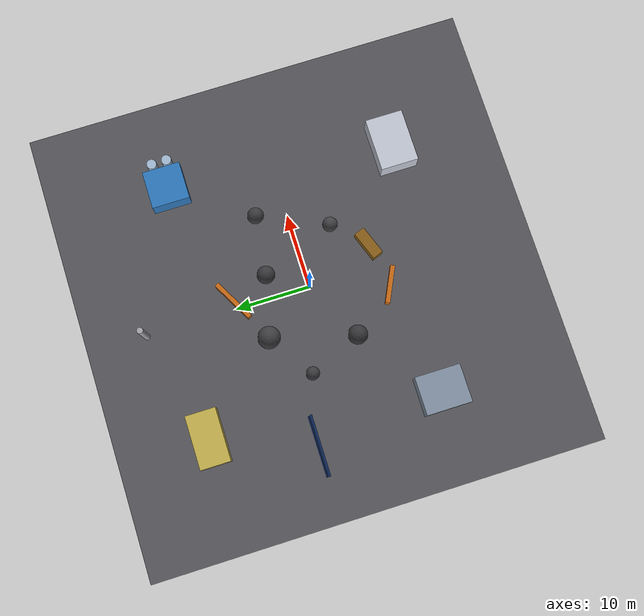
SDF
<sdf version="1.9">
 <world name="lunar_habitat">
  <gravity>0 0 -1.62</gravity>
  <plugin filename="gz-sim-physics-system" name="gz::sim::systems::Physics"/>
  <plugin filename="gz-sim-user-commands-system" name="gz::sim::systems::UserCommands"/>
  <plugin filename="gz-sim-scene-broadcaster-system" name="gz::sim::systems::SceneBroadcaster"/>
  <plugin filename="gz-sim-sensors-system" name="gz::sim::systems::Sensors">
   <render_engine>ogre2</render_engine>
  </plugin>
  <plugin filename="gz-sim-imu-system" name="gz::sim::systems::Imu"/>
  <scene>
   <ambient>0.08 0.08 0.10 1</ambient>
   <background>0.002 0.002 0.008 1</background>
   <shadows>true</shadows>
  </scene>
  <light name="lunar_sun" type="directional">
   <pose>0 0 40 0 0 0</pose>
   <diffuse>0.95 0.95 0.90 1</diffuse>
   <specular>0.25 0.25 0.25 1</specular>
   <direction>-0.5 0.25 -1</direction>
  </light>
  <model name="lunar_surface">
   <static>true</static>
   <link name="surface">
    <pose>0 0 -0.1 0 0 0</pose>
    <collision name="collision"><geometry><box><size>60 60 0.2</size></box></geometry></collision>
    <visual name="visual">
     <geometry><box><size>60 60 0.2</size></box></geometry>
     <material>
      <ambient>0.22 0.22 0.24 1</ambient>
      <diffuse>0.34 0.34 0.36 1</diffuse>
      <specular>0.03 0.03 0.03 1</specular>
     </material>
    </visual>
   </link>
  </model>
  <model name="habitat_module">
   <static>true</static>
   <pose>15 -16 1.5 0 0 0</pose>
   <link name="body">
    <collision name="collision"><geometry><box><size>7 5 3</size></box></geometry></collision>
    <visual name="visual">
     <geometry><box><size>7 5 3</size></box></geometry>
     <material>
      <ambient>0.65 0.67 0.72 1</ambient>
      <diffuse>0.78 0.80 0.85 1</diffuse>
      <specular>0.3 0.3 0.3 1</specular>
     </material>
    </visual>
   </link>
  </model>
  <model name="oxygen_station">
   <static>true</static>
   <pose>18 14 1.4 0 0 0</pose>
   <link name="body">
    <collision name="collision"><geometry><box><size>5 5 2.8</size></box></geometry></collision>
    <visual name="visual">
     <geometry><box><size>5 5 2.8</size></box></geometry>
     <material>
      <ambient>0.15 0.32 0.52 1</ambient>
      <diffuse>0.18 0.48 0.75 1</diffuse>
      <specular>0.25 0.25 0.25 1</specular>
     </material>
    </visual>
   </link>
  </model>
  <model name="oxygen_tank_1">
   <static>true</static>
   <pose>21.2 13 1.5 0 0 0</pose>
   <link name="tank">
    <collision name="collision">
     <geometry><cylinder><radius>0.65</radius><length>3</length></cylinder></geometry>
    </collision>
    <visual name="visual">
     <geometry><cylinder><radius>0.65</radius><length>3</length></cylinder></geometry>
     <material><ambient>0.55 0.65 0.72 1</ambient><diffuse>0.65 0.75 0.85 1</diffuse></material>
    </visual>
   </link>
  </model>
  <model name="oxygen_tank_2">
   <static>true</static>
   <pose>21.2 15 1.5 0 0 0</pose>
   <link name="tank">
    <collision name="collision">
     <geometry><cylinder><radius>0.65</radius><length>3</length></cylinder></geometry>
    </collision>
    <visual name="visual">
     <geometry><cylinder><radius>0.65</radius><length>3</length></cylinder></geometry>
     <material><ambient>0.55 0.65 0.72 1</ambient><diffuse>0.65 0.75 0.85 1</diffuse></material>
    </visual>
   </link>
  </model>
  <model name="research_zone">
   <static>true</static>
   <pose>-15 18 1.3 0 0 0</pose>
   <link name="body">
    <collision name="collision"><geometry><box><size>7 4 2.6</size></box></geometry></collision>
    <visual name="visual">
     <geometry><box><size>7 4 2.6</size></box></geometry>
     <material><ambient>0.55 0.50 0.28 1</ambient><diffuse>0.78 0.70 0.30 1</diffuse></material>
    </visual>
   </link>
  </model>
  <model name="airlock">
   <static>true</static>
   <pose>-18 -12 1.4 0 0 0</pose>
   <link name="body">
    <collision name="collision"><geometry><box><size>5 6 2.8</size></box></geometry></collision>
    <visual name="visual">
     <geometry><box><size>5 6 2.8</size></box></geometry>
     <material><ambient>0.38 0.42 0.48 1</ambient><diffuse>0.52 0.58 0.65 1</diffuse></material>
    </visual>
   </link>
  </model>
  <model name="boulder_1">
   <static>true</static>
   <pose>3 5 1.2 0 0 0</pose>
   <link name="rock">
    <collision name="collision"><geometry><sphere><radius>1.2</radius></sphere></geometry></collision>
    <visual name="visual">
     <geometry><sphere><radius>1.2</radius></sphere></geometry>
     <material><ambient>0.12 0.12 0.13 1</ambient><diffuse>0.22 0.22 0.23 1</diffuse></material>
    </visual>
   </link>
  </model>
  <model name="boulder_2">
   <static>true</static>
   <pose>-5 7 1.5 0 0 0</pose>
   <link name="rock">
    <collision name="collision"><geometry><sphere><radius>1.5</radius></sphere></geometry></collision>
    <visual name="visual">
     <geometry><sphere><radius>1.5</radius></sphere></geometry>
     <material><ambient>0.13 0.13 0.14 1</ambient><diffuse>0.24 0.24 0.25 1</diffuse></material>
    </visual>
   </link>
  </model>
  <model name="boulder_3">
   <static>true</static>
   <pose>7 -5 1.0 0 0 0</pose>
   <link name="rock">
    <collision name="collision"><geometry><sphere><radius>1</radius></sphere></geometry></collision>
    <visual name="visual">
     <geometry><sphere><radius>1</radius></sphere></geometry>
     <material><ambient>0.15 0.15 0.16 1</ambient><diffuse>0.26 0.26 0.27 1</diffuse></material>
    </visual>
   </link>
  </model>
  <model name="boulder_4">
   <static>true</static>
   <pose>-8 -4 1.3 0 0 0</pose>
   <link name="rock">
    <collision name="collision"><geometry><sphere><radius>1.3</radius></sphere></geometry></collision>
    <visual name="visual">
     <geometry><sphere><radius>1.3</radius></sphere></geometry>
     <material><ambient>0.12 0.12 0.13 1</ambient><diffuse>0.21 0.21 0.22 1</diffuse></material>
    </visual>
   </link>
  </model>
  <model name="boulder_5">
   <static>true</static>
   <pose>11 4 1.1 0 0 0</pose>
   <link name="rock">
    <collision name="collision"><geometry><sphere><radius>1.1</radius></sphere></geometry></collision>
    <visual name="visual">
     <geometry><sphere><radius>1.1</radius></sphere></geometry>
     <material><ambient>0.14 0.14 0.15 1</ambient><diffuse>0.23 0.23 0.24 1</diffuse></material>
    </visual>
   </link>
  </model>
  <model name="boulder_6">
   <static>true</static>
   <pose>-11 3 0.9 0 0 0</pose>
   <link name="rock">
    <collision name="collision"><geometry><sphere><radius>0.9</radius></sphere></geometry></collision>
    <visual name="visual">
     <geometry><sphere><radius>0.9</radius></sphere></geometry>
     <material><ambient>0.13 0.13 0.14 1</ambient><diffuse>0.23 0.23 0.24 1</diffuse></material>
    </visual>
   </link>
  </model>
  <model name="equipment_crates">
   <static>true</static>
   <pose>3 -9 0.75 0 0 0.35</pose>
   <link name="crate">
    <collision name="collision"><geometry><box><size>4 1.5 1.5</size></box></geometry></collision>
    <visual name="visual">
     <geometry><box><size>4 1.5 1.5</size></box></geometry>
     <material><ambient>0.35 0.24 0.08 1</ambient><diffuse>0.55 0.38 0.10 1</diffuse></material>
    </visual>
   </link>
  </model>
  <model name="navigation_barrier_1">
   <static>true</static>
   <pose>1 10 0.75 0 0 0.5</pose>
   <link name="barrier">
    <collision name="collision"><geometry><box><size>6 0.6 1.5</size></box></geometry></collision>
    <visual name="visual">
     <geometry><box><size>6 0.6 1.5</size></box></geometry>
     <material><ambient>0.55 0.28 0.05 1</ambient><diffuse>0.80 0.42 0.08 1</diffuse></material>
    </visual>
   </link>
  </model>
  <model name="navigation_barrier_2">
   <static>true</static>
   <pose>-3 -10 0.75 0 0 -0.45</pose>
   <link name="barrier">
    <collision name="collision"><geometry><box><size>5 0.6 1.5</size></box></geometry></collision>
    <visual name="visual">
     <geometry><box><size>5 0.6 1.5</size></box></geometry>
     <material><ambient>0.55 0.28 0.05 1</ambient><diffuse>0.80 0.42 0.08 1</diffuse></material>
    </visual>
   </link>
  </model>
  <model name="solar_array">
   <static>true</static>
   <pose>-20 5 1.0 0.15 0 0</pose>
   <link name="panel">
    <collision name="collision"><geometry><box><size>8 0.3 2</size></box></geometry></collision>
    <visual name="visual">
     <geometry><box><size>8 0.3 2</size></box></geometry>
     <material>
      <ambient>0.03 0.08 0.18 1</ambient>
      <diffuse>0.04 0.15 0.35 1</diffuse>
      <specular>0.45 0.45 0.55 1</specular>
     </material>
    </visual>
   </link>
  </model>
  <model name="communication_tower">
   <static>true</static>
   <pose>0 22 3 0 0 0</pose>
   <link name="tower">
    <collision name="collision">
     <geometry><cylinder><radius>0.4</radius><length>6</length></cylinder></geometry>
    </collision>
    <visual name="visual">
     <geometry><cylinder><radius>0.4</radius><length>6</length></cylinder></geometry>
     <material><ambient>0.45 0.45 0.48 1</ambient><diffuse>0.65 0.65 0.68 1</diffuse></material>
    </visual>
   </link>
  </model>
 </world>
</sdf>
